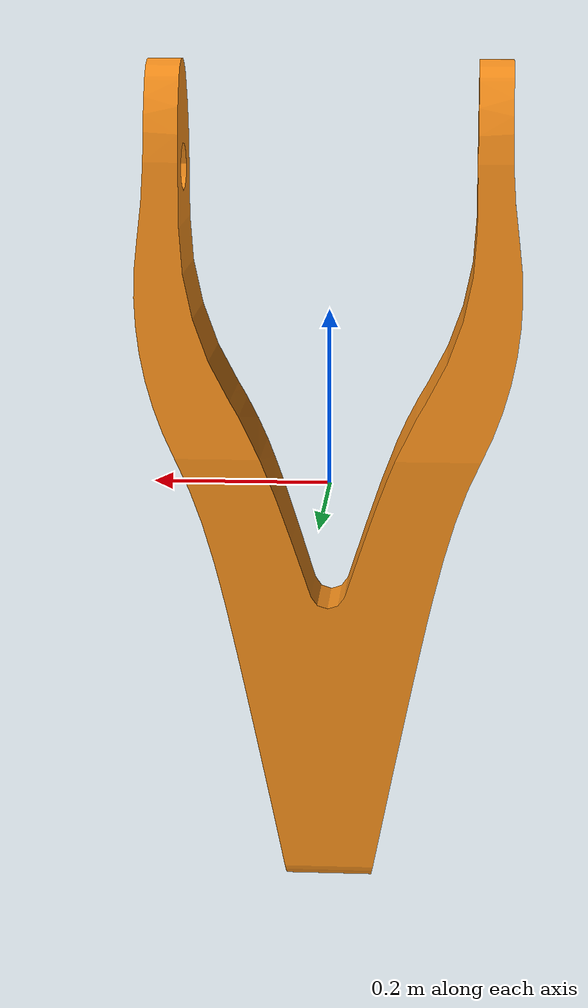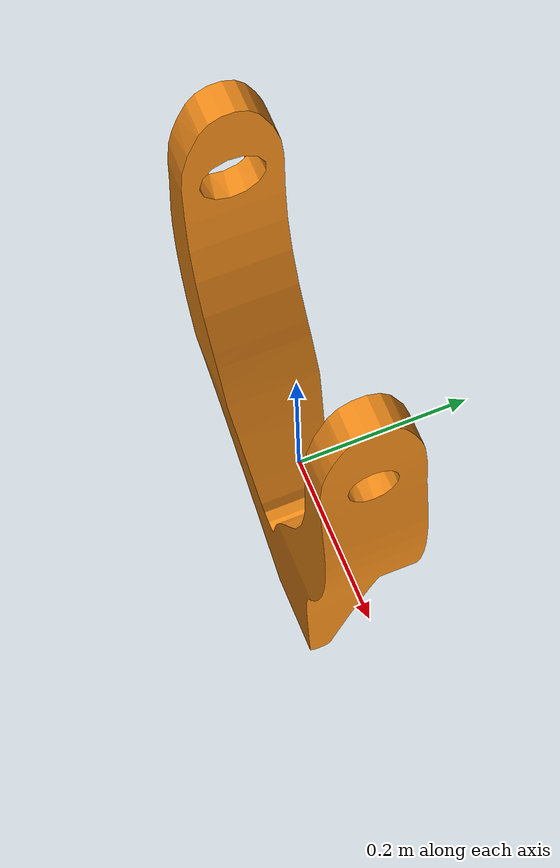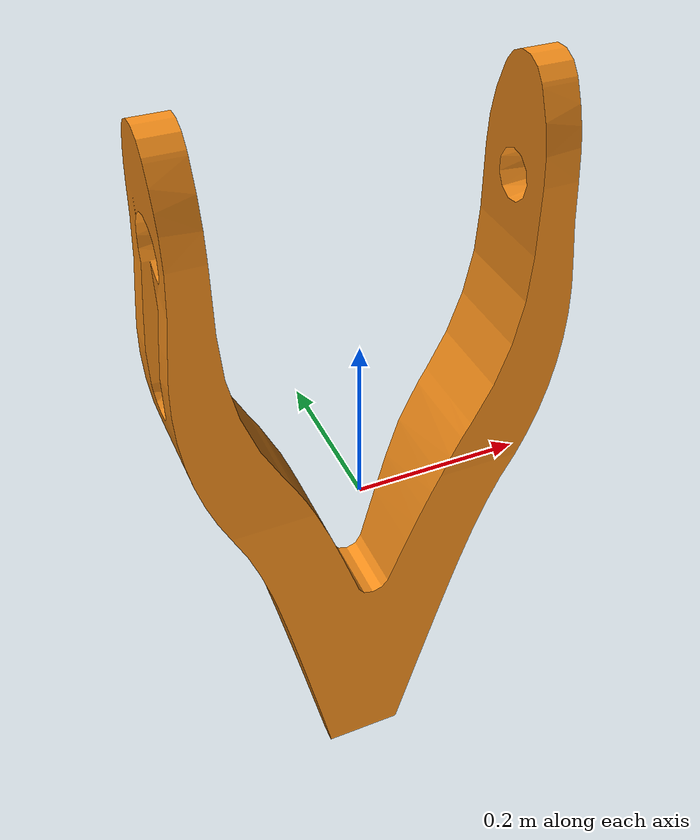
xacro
<?xml version="1.0"?>
<robot name="test_robot" xmlns:xacro="http://www.ros.org/wiki/xacro">

  <link name="link_fl_leg_p3">
    <collision>
      <origin rpy="0 0 0" xyz="-0.2 0 0.2041745"/>
      <geometry>
        <mesh filename="package://my_robot_description/model/stl/Leg_p3.stl" scale="0.01 0.01 0.01"/>
      </geometry>
    </collision>

    <visual>
      <origin rpy="0 0 0" xyz="-0.2 0 0.2041745"/>
      <geometry>
        <mesh filename="package://my_robot_description/model/stl/Leg_p3.stl" scale="0.01 0.01 0.01"/>
      </geometry>
      <material name="orange"/>
    </visual>
  </link>

</robot>
